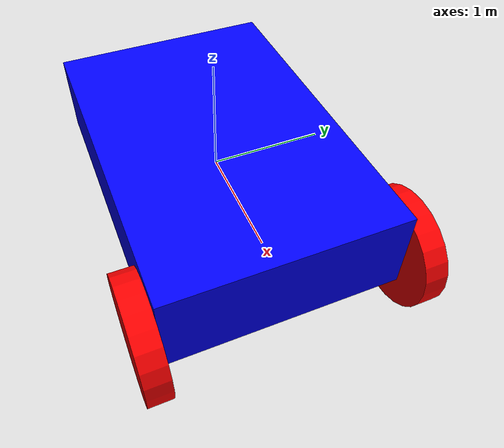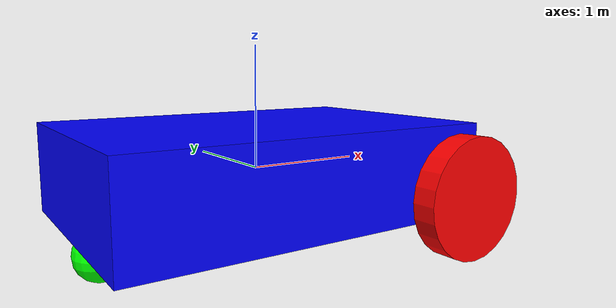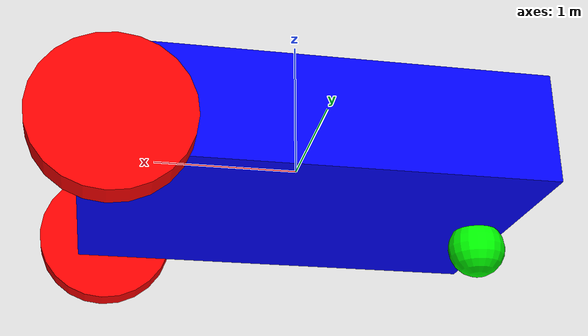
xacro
<?xml version="1.0"?>
<robot xmlns:xacro="http://www.ros.org/wiki/xacro">

  <!-- Chassis -->
  <link name="chassis">
    <inertial>
      <mass value="1.14395"/>
      <inertia ixx="0.095329" ixy="0.0" ixz="0.0" iyy="0.381317" iyz="0.0" izz="0.476646"/>
    </inertial>
    <visual>
      <geometry>
        <box size="3 2 0.75"/>
      </geometry>
      <material name="blue">
        <color rgba="0 0 1 1"/>
      </material>
    </visual>
    <collision>
      <geometry>
        <box size="3 2 0.75"/>
      </geometry>
    </collision>
  </link>

  <!-- Left Wheel -->
  <link name="left_wheel">
    <inertial>
      <mass value="0.5"/>
      <inertia ixx="0.043333" ixy="0" ixz="0" iyy="0.043333" iyz="0" izz="0.08"/>
    </inertial>
    <visual>
      <geometry>
        <cylinder radius="0.5" length="0.2"/>
      </geometry>
      <material name="red">
        <color rgba="1 0 0 1"/>
      </material>
    </visual>
    <collision>
      <geometry>
        <cylinder radius="0.5" length="0.2"/>
      </geometry>
      <material name="red">
        <color rgba="1 0 0 1"/>
      </material>
    </collision>
  </link>

  <!-- Right Wheel -->
  <link name="right_wheel">
    <inertial>
      <mass value="1"/>
      <inertia ixx="0.043333" ixy="0" ixz="0" iyy="0.043333" iyz="0" izz="0.08"/>
    </inertial>
    <visual>
      <geometry>
        <cylinder radius="0.5" length="0.2"/>
      </geometry>
      <material name="red">
        <color rgba="1 0 0 1"/>
      </material>
    </visual>
    <collision>
      <geometry>
        <cylinder radius="0.5" length="0.2"/>
      </geometry>
      <material name="red">
        <color rgba="1 0 0 1"/>
      </material>
    </collision>
  </link>

  <!-- Caster Wheel -->
  <link name="caster">
    <inertial>
      <mass value="1"/>
      <inertia ixx="0.016" ixy="0" ixz="0" iyy="0.016" iyz="0" izz="0.016"/>
    </inertial>
    <visual>
      <geometry>
        <sphere radius="0.2"/>
      </geometry>
      <material name="green">
        <color rgba="0 1 0 1"/>
      </material>
    </visual>
    <collision>
      <geometry>
        <sphere radius="0.2"/>
      </geometry>
    </collision>
  </link>

  <!-- Joints -->
  <joint name="left_wheel_joint" type="continuous">
    <parent link="chassis"/>
    <child link="left_wheel"/>
    <origin xyz="1.3 1.1 -0.20" rpy="1.57 0 0"/>
    <axis xyz="0 0 1"/>
  </joint>

  <joint name="right_wheel_joint" type="continuous">
    <parent link="chassis"/>
    <child link="right_wheel"/>
    <origin xyz="1.3 -1.1 -0.20" rpy="-1.57 0 0"/>
    <axis xyz="0 0 1"/>
  </joint>

  <joint name="caster_joint" type="fixed">
    <parent link="chassis"/>
    <child link="caster"/>
    <origin xyz="-1.3 0 -0.5" rpy="0 0 0"/>
  </joint>

</robot>
